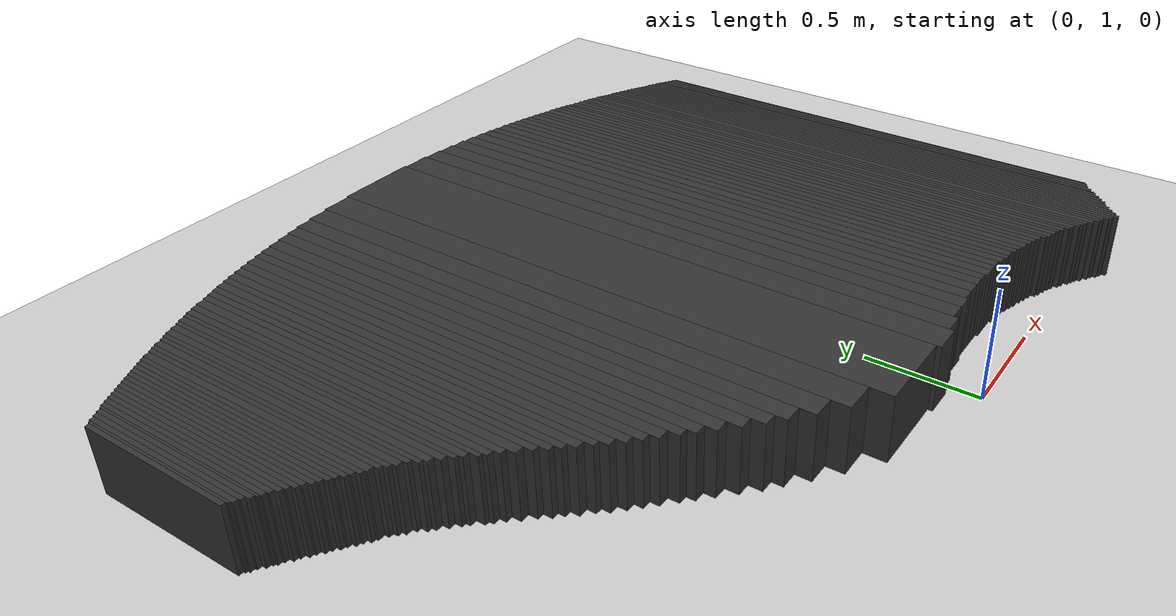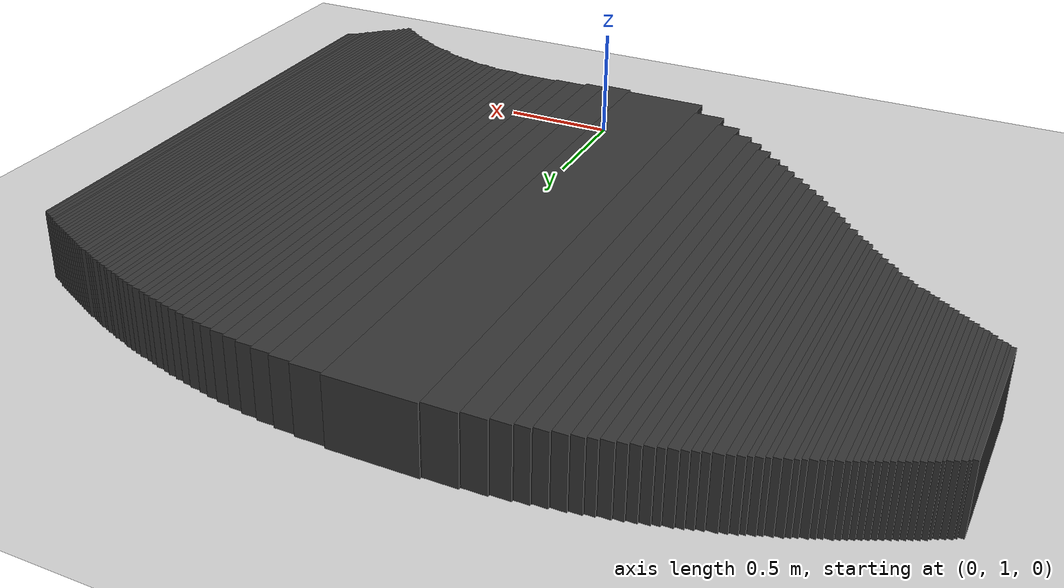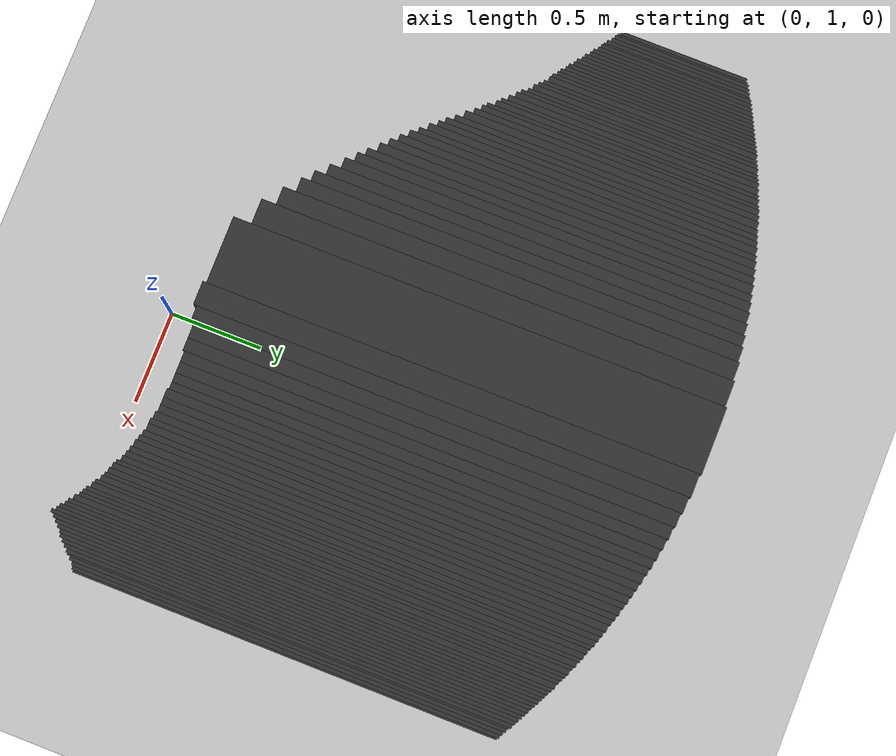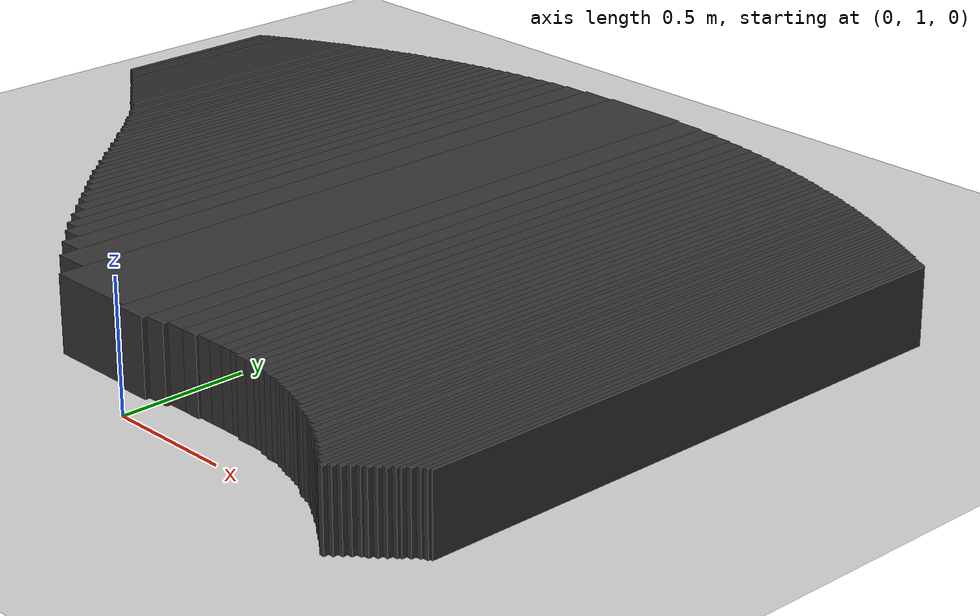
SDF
<sdf version="1.7">
 <world name="mapa_mundo">
  <model name="ground_plane">
   <static>true</static>
   <link name="link">
    <collision name="collision">
     <geometry><plane><normal>0 0 1</normal><size>10 10</size></plane></geometry>
     <surface><friction><ode><mu>100</mu><mu2>50</mu2></ode></friction></surface>
    </collision>
    <visual name="visual">
     <geometry><plane><normal>0 0 1</normal><size>10 10</size></plane></geometry>
     <material>
      <ambient>0.8 0.8 0.8 1</ambient>
      <diffuse>0.8 0.8 0.8 1</diffuse>
      <specular>0.8 0.8 0.8 1</specular>
     </material>
    </visual>
   </link>
  </model>
  <model name="wall_0">
   <static>true</static>
   <link name="link">
    <collision name="collision"><geometry><box><size>0.37 2.71 0.3</size></box></geometry></collision>
    <visual name="visual">
     <geometry><box><size>0.37 2.71 0.3</size></box></geometry>
     <material><ambient>0.2 0.2 0.2 1</ambient><diffuse>0.2 0.2 0.2 1</diffuse></material>
    </visual>
    <pose>-0.365 2.505 0.15 0 0 0</pose>
   </link>
  </model>
  <model name="wall_1">
   <static>true</static>
   <link name="link">
    <collision name="collision"><geometry><box><size>0.14 2.6 0.3</size></box></geometry></collision>
    <visual name="visual">
     <geometry><box><size>0.14 2.6 0.3</size></box></geometry>
     <material><ambient>0.2 0.2 0.2 1</ambient><diffuse>0.2 0.2 0.2 1</diffuse></material>
    </visual>
    <pose>-0.62 2.5500000000000003 0.15 0 0 0</pose>
   </link>
  </model>
  <model name="wall_2">
   <static>true</static>
   <link name="link">
    <collision name="collision"><geometry><box><size>0.13 2.72 0.3</size></box></geometry></collision>
    <visual name="visual">
     <geometry><box><size>0.13 2.72 0.3</size></box></geometry>
     <material><ambient>0.2 0.2 0.2 1</ambient><diffuse>0.2 0.2 0.2 1</diffuse></material>
    </visual>
    <pose>-0.115 2.49 0.15 0 0 0</pose>
   </link>
  </model>
  <model name="wall_3">
   <static>true</static>
   <link name="link">
    <collision name="collision">
     <geometry><box><size>0.1 2.5100000000000002 0.3</size></box></geometry>
    </collision>
    <visual name="visual">
     <geometry><box><size>0.1 2.5100000000000002 0.3</size></box></geometry>
     <material><ambient>0.2 0.2 0.2 1</ambient><diffuse>0.2 0.2 0.2 1</diffuse></material>
    </visual>
    <pose>-0.74 2.585 0.15 0 0 0</pose>
   </link>
  </model>
  <model name="wall_4">
   <static>true</static>
   <link name="link">
    <collision name="collision"><geometry><box><size>0.09 2.69 0.3</size></box></geometry></collision>
    <visual name="visual">
     <geometry><box><size>0.09 2.69 0.3</size></box></geometry>
     <material><ambient>0.2 0.2 0.2 1</ambient><diffuse>0.2 0.2 0.2 1</diffuse></material>
    </visual>
    <pose>-0.005 2.495 0.15 0 0 0</pose>
   </link>
  </model>
  <model name="wall_5">
   <static>true</static>
   <link name="link">
    <collision name="collision"><geometry><box><size>0.08 2.43 0.3</size></box></geometry></collision>
    <visual name="visual">
     <geometry><box><size>0.08 2.43 0.3</size></box></geometry>
     <material><ambient>0.2 0.2 0.2 1</ambient><diffuse>0.2 0.2 0.2 1</diffuse></material>
    </visual>
    <pose>-0.8300000000000001 2.615 0.15 0 0 0</pose>
   </link>
  </model>
  <model name="wall_6">
   <static>true</static>
   <link name="link">
    <collision name="collision"><geometry><box><size>0.08 2.66 0.3</size></box></geometry></collision>
    <visual name="visual">
     <geometry><box><size>0.08 2.66 0.3</size></box></geometry>
     <material><ambient>0.2 0.2 0.2 1</ambient><diffuse>0.2 0.2 0.2 1</diffuse></material>
    </visual>
    <pose>0.08 2.5 0.15 0 0 0</pose>
   </link>
  </model>
  <model name="wall_7">
   <static>true</static>
   <link name="link">
    <collision name="collision"><geometry><box><size>0.06 2.37 0.3</size></box></geometry></collision>
    <visual name="visual">
     <geometry><box><size>0.06 2.37 0.3</size></box></geometry>
     <material><ambient>0.2 0.2 0.2 1</ambient><diffuse>0.2 0.2 0.2 1</diffuse></material>
    </visual>
    <pose>-0.9 2.6350000000000002 0.15 0 0 0</pose>
   </link>
  </model>
  <model name="wall_8">
   <static>true</static>
   <link name="link">
    <collision name="collision"><geometry><box><size>0.07 2.65 0.3</size></box></geometry></collision>
    <visual name="visual">
     <geometry><box><size>0.07 2.65 0.3</size></box></geometry>
     <material><ambient>0.2 0.2 0.2 1</ambient><diffuse>0.2 0.2 0.2 1</diffuse></material>
    </visual>
    <pose>0.155 2.495 0.15 0 0 0</pose>
   </link>
  </model>
  <model name="wall_9">
   <static>true</static>
   <link name="link">
    <collision name="collision">
     <geometry><box><size>0.06 2.3000000000000003 0.3</size></box></geometry>
    </collision>
    <visual name="visual">
     <geometry><box><size>0.06 2.3000000000000003 0.3</size></box></geometry>
     <material><ambient>0.2 0.2 0.2 1</ambient><diffuse>0.2 0.2 0.2 1</diffuse></material>
    </visual>
    <pose>-0.96 2.66 0.15 0 0 0</pose>
   </link>
  </model>
  <model name="wall_10">
   <static>true</static>
   <link name="link">
    <collision name="collision"><geometry><box><size>0.06 2.63 0.3</size></box></geometry></collision>
    <visual name="visual">
     <geometry><box><size>0.06 2.63 0.3</size></box></geometry>
     <material><ambient>0.2 0.2 0.2 1</ambient><diffuse>0.2 0.2 0.2 1</diffuse></material>
    </visual>
    <pose>0.22 2.495 0.15 0 0 0</pose>
   </link>
  </model>
  <model name="wall_11">
   <static>true</static>
   <link name="link">
    <collision name="collision"><geometry><box><size>0.06 2.23 0.3</size></box></geometry></collision>
    <visual name="visual">
     <geometry><box><size>0.06 2.23 0.3</size></box></geometry>
     <material><ambient>0.2 0.2 0.2 1</ambient><diffuse>0.2 0.2 0.2 1</diffuse></material>
    </visual>
    <pose>-1.02 2.685 0.15 0 0 0</pose>
   </link>
  </model>
  <model name="wall_12">
   <static>true</static>
   <link name="link">
    <collision name="collision"><geometry><box><size>0.06 2.62 0.3</size></box></geometry></collision>
    <visual name="visual">
     <geometry><box><size>0.06 2.62 0.3</size></box></geometry>
     <material><ambient>0.2 0.2 0.2 1</ambient><diffuse>0.2 0.2 0.2 1</diffuse></material>
    </visual>
    <pose>0.28 2.49 0.15 0 0 0</pose>
   </link>
  </model>
  <model name="wall_13">
   <static>true</static>
   <link name="link">
    <collision name="collision"><geometry><box><size>0.05 2.17 0.3</size></box></geometry></collision>
    <visual name="visual">
     <geometry><box><size>0.05 2.17 0.3</size></box></geometry>
     <material><ambient>0.2 0.2 0.2 1</ambient><diffuse>0.2 0.2 0.2 1</diffuse></material>
    </visual>
    <pose>-1.075 2.705 0.15 0 0 0</pose>
   </link>
  </model>
  <model name="wall_14">
   <static>true</static>
   <link name="link">
    <collision name="collision"><geometry><box><size>0.05 2.61 0.3</size></box></geometry></collision>
    <visual name="visual">
     <geometry><box><size>0.05 2.61 0.3</size></box></geometry>
     <material><ambient>0.2 0.2 0.2 1</ambient><diffuse>0.2 0.2 0.2 1</diffuse></material>
    </visual>
    <pose>0.335 2.485 0.15 0 0 0</pose>
   </link>
  </model>
  <model name="wall_15">
   <static>true</static>
   <link name="link">
    <collision name="collision"><geometry><box><size>0.04 2.12 0.3</size></box></geometry></collision>
    <visual name="visual">
     <geometry><box><size>0.04 2.12 0.3</size></box></geometry>
     <material><ambient>0.2 0.2 0.2 1</ambient><diffuse>0.2 0.2 0.2 1</diffuse></material>
    </visual>
    <pose>-1.12 2.72 0.15 0 0 0</pose>
   </link>
  </model>
  <model name="wall_16">
   <static>true</static>
   <link name="link">
    <collision name="collision"><geometry><box><size>0.04 2.6 0.3</size></box></geometry></collision>
    <visual name="visual">
     <geometry><box><size>0.04 2.6 0.3</size></box></geometry>
     <material><ambient>0.2 0.2 0.2 1</ambient><diffuse>0.2 0.2 0.2 1</diffuse></material>
    </visual>
    <pose>0.38 2.48 0.15 0 0 0</pose>
   </link>
  </model>
  <model name="wall_17">
   <static>true</static>
   <link name="link">
    <collision name="collision"><geometry><box><size>0.05 2.06 0.3</size></box></geometry></collision>
    <visual name="visual">
     <geometry><box><size>0.05 2.06 0.3</size></box></geometry>
     <material><ambient>0.2 0.2 0.2 1</ambient><diffuse>0.2 0.2 0.2 1</diffuse></material>
    </visual>
    <pose>-1.165 2.74 0.15 0 0 0</pose>
   </link>
  </model>
  <model name="wall_18">
   <static>true</static>
   <link name="link">
    <collision name="collision"><geometry><box><size>0.05 2.6 0.3</size></box></geometry></collision>
    <visual name="visual">
     <geometry><box><size>0.05 2.6 0.3</size></box></geometry>
     <material><ambient>0.2 0.2 0.2 1</ambient><diffuse>0.2 0.2 0.2 1</diffuse></material>
    </visual>
    <pose>0.425 2.47 0.15 0 0 0</pose>
   </link>
  </model>
  <model name="wall_19">
   <static>true</static>
   <link name="link">
    <collision name="collision">
     <geometry><box><size>0.04 2.0100000000000002 0.3</size></box></geometry>
    </collision>
    <visual name="visual">
     <geometry><box><size>0.04 2.0100000000000002 0.3</size></box></geometry>
     <material><ambient>0.2 0.2 0.2 1</ambient><diffuse>0.2 0.2 0.2 1</diffuse></material>
    </visual>
    <pose>-1.21 2.755 0.15 0 0 0</pose>
   </link>
  </model>
  <model name="wall_20">
   <static>true</static>
   <link name="link">
    <collision name="collision"><geometry><box><size>0.04 2.59 0.3</size></box></geometry></collision>
    <visual name="visual">
     <geometry><box><size>0.04 2.59 0.3</size></box></geometry>
     <material><ambient>0.2 0.2 0.2 1</ambient><diffuse>0.2 0.2 0.2 1</diffuse></material>
    </visual>
    <pose>0.47000000000000003 2.465 0.15 0 0 0</pose>
   </link>
  </model>
  <model name="wall_21">
   <static>true</static>
   <link name="link">
    <collision name="collision"><geometry><box><size>0.04 1.96 0.3</size></box></geometry></collision>
    <visual name="visual">
     <geometry><box><size>0.04 1.96 0.3</size></box></geometry>
     <material><ambient>0.2 0.2 0.2 1</ambient><diffuse>0.2 0.2 0.2 1</diffuse></material>
    </visual>
    <pose>-1.25 2.77 0.15 0 0 0</pose>
   </link>
  </model>
  <model name="wall_22">
   <static>true</static>
   <link name="link">
    <collision name="collision"><geometry><box><size>0.04 2.58 0.3</size></box></geometry></collision>
    <visual name="visual">
     <geometry><box><size>0.04 2.58 0.3</size></box></geometry>
     <material><ambient>0.2 0.2 0.2 1</ambient><diffuse>0.2 0.2 0.2 1</diffuse></material>
    </visual>
    <pose>0.51 2.46 0.15 0 0 0</pose>
   </link>
  </model>
  <model name="wall_23">
   <static>true</static>
   <link name="link">
    <collision name="collision">
     <geometry><box><size>0.04 1.9100000000000001 0.3</size></box></geometry>
    </collision>
    <visual name="visual">
     <geometry><box><size>0.04 1.9100000000000001 0.3</size></box></geometry>
     <material><ambient>0.2 0.2 0.2 1</ambient><diffuse>0.2 0.2 0.2 1</diffuse></material>
    </visual>
    <pose>-1.29 2.785 0.15 0 0 0</pose>
   </link>
  </model>
  <model name="wall_24">
   <static>true</static>
   <link name="link">
    <collision name="collision"><geometry><box><size>0.04 2.58 0.3</size></box></geometry></collision>
    <visual name="visual">
     <geometry><box><size>0.04 2.58 0.3</size></box></geometry>
     <material><ambient>0.2 0.2 0.2 1</ambient><diffuse>0.2 0.2 0.2 1</diffuse></material>
    </visual>
    <pose>0.55 2.45 0.15 0 0 0</pose>
   </link>
  </model>
  <model name="wall_25">
   <static>true</static>
   <link name="link">
    <collision name="collision"><geometry><box><size>0.03 1.86 0.3</size></box></geometry></collision>
    <visual name="visual">
     <geometry><box><size>0.03 1.86 0.3</size></box></geometry>
     <material><ambient>0.2 0.2 0.2 1</ambient><diffuse>0.2 0.2 0.2 1</diffuse></material>
    </visual>
    <pose>-1.325 2.8000000000000003 0.15 0 0 0</pose>
   </link>
  </model>
  <model name="wall_26">
   <static>true</static>
   <link name="link">
    <collision name="collision"><geometry><box><size>0.03 2.58 0.3</size></box></geometry></collision>
    <visual name="visual">
     <geometry><box><size>0.03 2.58 0.3</size></box></geometry>
     <material><ambient>0.2 0.2 0.2 1</ambient><diffuse>0.2 0.2 0.2 1</diffuse></material>
    </visual>
    <pose>0.585 2.44 0.15 0 0 0</pose>
   </link>
  </model>
  <model name="wall_27">
   <static>true</static>
   <link name="link">
    <collision name="collision"><geometry><box><size>0.04 1.81 0.3</size></box></geometry></collision>
    <visual name="visual">
     <geometry><box><size>0.04 1.81 0.3</size></box></geometry>
     <material><ambient>0.2 0.2 0.2 1</ambient><diffuse>0.2 0.2 0.2 1</diffuse></material>
    </visual>
    <pose>-1.36 2.815 0.15 0 0 0</pose>
   </link>
  </model>
  <model name="wall_28">
   <static>true</static>
   <link name="link">
    <collision name="collision"><geometry><box><size>0.04 2.57 0.3</size></box></geometry></collision>
    <visual name="visual">
     <geometry><box><size>0.04 2.57 0.3</size></box></geometry>
     <material><ambient>0.2 0.2 0.2 1</ambient><diffuse>0.2 0.2 0.2 1</diffuse></material>
    </visual>
    <pose>0.62 2.435 0.15 0 0 0</pose>
   </link>
  </model>
  <model name="wall_29">
   <static>true</static>
   <link name="link">
    <collision name="collision"><geometry><box><size>0.03 1.76 0.3</size></box></geometry></collision>
    <visual name="visual">
     <geometry><box><size>0.03 1.76 0.3</size></box></geometry>
     <material><ambient>0.2 0.2 0.2 1</ambient><diffuse>0.2 0.2 0.2 1</diffuse></material>
    </visual>
    <pose>-1.395 2.83 0.15 0 0 0</pose>
   </link>
  </model>
  <model name="wall_30">
   <static>true</static>
   <link name="link">
    <collision name="collision"><geometry><box><size>0.03 2.57 0.3</size></box></geometry></collision>
    <visual name="visual">
     <geometry><box><size>0.03 2.57 0.3</size></box></geometry>
     <material><ambient>0.2 0.2 0.2 1</ambient><diffuse>0.2 0.2 0.2 1</diffuse></material>
    </visual>
    <pose>0.655 2.4250000000000003 0.15 0 0 0</pose>
   </link>
  </model>
  <model name="wall_31">
   <static>true</static>
   <link name="link">
    <collision name="collision"><geometry><box><size>0.03 1.72 0.3</size></box></geometry></collision>
    <visual name="visual">
     <geometry><box><size>0.03 1.72 0.3</size></box></geometry>
     <material><ambient>0.2 0.2 0.2 1</ambient><diffuse>0.2 0.2 0.2 1</diffuse></material>
    </visual>
    <pose>-1.425 2.84 0.15 0 0 0</pose>
   </link>
  </model>
  <model name="wall_32">
   <static>true</static>
   <link name="link">
    <collision name="collision"><geometry><box><size>0.03 2.57 0.3</size></box></geometry></collision>
    <visual name="visual">
     <geometry><box><size>0.03 2.57 0.3</size></box></geometry>
     <material><ambient>0.2 0.2 0.2 1</ambient><diffuse>0.2 0.2 0.2 1</diffuse></material>
    </visual>
    <pose>0.685 2.415 0.15 0 0 0</pose>
   </link>
  </model>
  <model name="wall_33">
   <static>true</static>
   <link name="link">
    <collision name="collision"><geometry><box><size>0.03 1.67 0.3</size></box></geometry></collision>
    <visual name="visual">
     <geometry><box><size>0.03 1.67 0.3</size></box></geometry>
     <material><ambient>0.2 0.2 0.2 1</ambient><diffuse>0.2 0.2 0.2 1</diffuse></material>
    </visual>
    <pose>-1.455 2.855 0.15 0 0 0</pose>
   </link>
  </model>
  <model name="wall_34">
   <static>true</static>
   <link name="link">
    <collision name="collision"><geometry><box><size>0.04 2.57 0.3</size></box></geometry></collision>
    <visual name="visual">
     <geometry><box><size>0.04 2.57 0.3</size></box></geometry>
     <material><ambient>0.2 0.2 0.2 1</ambient><diffuse>0.2 0.2 0.2 1</diffuse></material>
    </visual>
    <pose>0.72 2.4050000000000002 0.15 0 0 0</pose>
   </link>
  </model>
  <model name="wall_35">
   <static>true</static>
   <link name="link">
    <collision name="collision"><geometry><box><size>0.04 1.62 0.3</size></box></geometry></collision>
    <visual name="visual">
     <geometry><box><size>0.04 1.62 0.3</size></box></geometry>
     <material><ambient>0.2 0.2 0.2 1</ambient><diffuse>0.2 0.2 0.2 1</diffuse></material>
    </visual>
    <pose>-1.49 2.87 0.15 0 0 0</pose>
   </link>
  </model>
  <model name="wall_36">
   <static>true</static>
   <link name="link">
    <collision name="collision"><geometry><box><size>0.03 2.57 0.3</size></box></geometry></collision>
    <visual name="visual">
     <geometry><box><size>0.03 2.57 0.3</size></box></geometry>
     <material><ambient>0.2 0.2 0.2 1</ambient><diffuse>0.2 0.2 0.2 1</diffuse></material>
    </visual>
    <pose>0.755 2.395 0.15 0 0 0</pose>
   </link>
  </model>
  <model name="wall_37">
   <static>true</static>
   <link name="link">
    <collision name="collision"><geometry><box><size>0.03 1.57 0.3</size></box></geometry></collision>
    <visual name="visual">
     <geometry><box><size>0.03 1.57 0.3</size></box></geometry>
     <material><ambient>0.2 0.2 0.2 1</ambient><diffuse>0.2 0.2 0.2 1</diffuse></material>
    </visual>
    <pose>-1.5250000000000001 2.8850000000000002 0.15 0 0 0</pose>
   </link>
  </model>
  <model name="wall_38">
   <static>true</static>
   <link name="link">
    <collision name="collision"><geometry><box><size>0.03 2.57 0.3</size></box></geometry></collision>
    <visual name="visual">
     <geometry><box><size>0.03 2.57 0.3</size></box></geometry>
     <material><ambient>0.2 0.2 0.2 1</ambient><diffuse>0.2 0.2 0.2 1</diffuse></material>
    </visual>
    <pose>0.785 2.3850000000000002 0.15 0 0 0</pose>
   </link>
  </model>
  <model name="wall_39">
   <static>true</static>
   <link name="link">
    <collision name="collision"><geometry><box><size>0.03 1.53 0.3</size></box></geometry></collision>
    <visual name="visual">
     <geometry><box><size>0.03 1.53 0.3</size></box></geometry>
     <material><ambient>0.2 0.2 0.2 1</ambient><diffuse>0.2 0.2 0.2 1</diffuse></material>
    </visual>
    <pose>-1.555 2.895 0.15 0 0 0</pose>
   </link>
  </model>
  <model name="wall_40">
   <static>true</static>
   <link name="link">
    <collision name="collision"><geometry><box><size>0.03 2.57 0.3</size></box></geometry></collision>
    <visual name="visual">
     <geometry><box><size>0.03 2.57 0.3</size></box></geometry>
     <material><ambient>0.2 0.2 0.2 1</ambient><diffuse>0.2 0.2 0.2 1</diffuse></material>
    </visual>
    <pose>0.8150000000000001 2.375 0.15 0 0 0</pose>
   </link>
  </model>
  <model name="wall_41">
   <static>true</static>
   <link name="link">
    <collision name="collision"><geometry><box><size>0.02 1.5 0.3</size></box></geometry></collision>
    <visual name="visual">
     <geometry><box><size>0.02 1.5 0.3</size></box></geometry>
     <material><ambient>0.2 0.2 0.2 1</ambient><diffuse>0.2 0.2 0.2 1</diffuse></material>
    </visual>
    <pose>-1.58 2.9 0.15 0 0 0</pose>
   </link>
  </model>
  <model name="wall_42">
   <static>true</static>
   <link name="link">
    <collision name="collision"><geometry><box><size>0.02 2.58 0.3</size></box></geometry></collision>
    <visual name="visual">
     <geometry><box><size>0.02 2.58 0.3</size></box></geometry>
     <material><ambient>0.2 0.2 0.2 1</ambient><diffuse>0.2 0.2 0.2 1</diffuse></material>
    </visual>
    <pose>0.84 2.36 0.15 0 0 0</pose>
   </link>
  </model>
  <model name="wall_43">
   <static>true</static>
   <link name="link">
    <collision name="collision"><geometry><box><size>0.03 1.45 0.3</size></box></geometry></collision>
    <visual name="visual">
     <geometry><box><size>0.03 1.45 0.3</size></box></geometry>
     <material><ambient>0.2 0.2 0.2 1</ambient><diffuse>0.2 0.2 0.2 1</diffuse></material>
    </visual>
    <pose>-1.605 2.915 0.15 0 0 0</pose>
   </link>
  </model>
  <model name="wall_44">
   <static>true</static>
   <link name="link">
    <collision name="collision"><geometry><box><size>0.03 2.58 0.3</size></box></geometry></collision>
    <visual name="visual">
     <geometry><box><size>0.03 2.58 0.3</size></box></geometry>
     <material><ambient>0.2 0.2 0.2 1</ambient><diffuse>0.2 0.2 0.2 1</diffuse></material>
    </visual>
    <pose>0.865 2.35 0.15 0 0 0</pose>
   </link>
  </model>
  <model name="wall_45">
   <static>true</static>
   <link name="link">
    <collision name="collision"><geometry><box><size>0.02 1.42 0.3</size></box></geometry></collision>
    <visual name="visual">
     <geometry><box><size>0.02 1.42 0.3</size></box></geometry>
     <material><ambient>0.2 0.2 0.2 1</ambient><diffuse>0.2 0.2 0.2 1</diffuse></material>
    </visual>
    <pose>-1.6300000000000001 2.92 0.15 0 0 0</pose>
   </link>
  </model>
  <model name="wall_46">
   <static>true</static>
   <link name="link">
    <collision name="collision"><geometry><box><size>0.03 2.58 0.3</size></box></geometry></collision>
    <visual name="visual">
     <geometry><box><size>0.03 2.58 0.3</size></box></geometry>
     <material><ambient>0.2 0.2 0.2 1</ambient><diffuse>0.2 0.2 0.2 1</diffuse></material>
    </visual>
    <pose>0.895 2.34 0.15 0 0 0</pose>
   </link>
  </model>
  <model name="wall_47">
   <static>true</static>
   <link name="link">
    <collision name="collision">
     <geometry><box><size>0.03 1.3800000000000001 0.3</size></box></geometry>
    </collision>
    <visual name="visual">
     <geometry><box><size>0.03 1.3800000000000001 0.3</size></box></geometry>
     <material><ambient>0.2 0.2 0.2 1</ambient><diffuse>0.2 0.2 0.2 1</diffuse></material>
    </visual>
    <pose>-1.655 2.93 0.15 0 0 0</pose>
   </link>
  </model>
  <model name="wall_48">
   <static>true</static>
   <link name="link">
    <collision name="collision"><geometry><box><size>0.02 2.58 0.3</size></box></geometry></collision>
    <visual name="visual">
     <geometry><box><size>0.02 2.58 0.3</size></box></geometry>
     <material><ambient>0.2 0.2 0.2 1</ambient><diffuse>0.2 0.2 0.2 1</diffuse></material>
    </visual>
    <pose>0.92 2.33 0.15 0 0 0</pose>
   </link>
  </model>
  <model name="wall_49">
   <static>true</static>
   <link name="link">
    <collision name="collision"><geometry><box><size>0.03 1.34 0.3</size></box></geometry></collision>
    <visual name="visual">
     <geometry><box><size>0.03 1.34 0.3</size></box></geometry>
     <material><ambient>0.2 0.2 0.2 1</ambient><diffuse>0.2 0.2 0.2 1</diffuse></material>
    </visual>
    <pose>-1.685 2.94 0.15 0 0 0</pose>
   </link>
  </model>
  <model name="wall_50">
   <static>true</static>
   <link name="link">
    <collision name="collision"><geometry><box><size>0.03 2.58 0.3</size></box></geometry></collision>
    <visual name="visual">
     <geometry><box><size>0.03 2.58 0.3</size></box></geometry>
     <material><ambient>0.2 0.2 0.2 1</ambient><diffuse>0.2 0.2 0.2 1</diffuse></material>
    </visual>
    <pose>0.9450000000000001 2.32 0.15 0 0 0</pose>
   </link>
  </model>
  <model name="wall_51">
   <static>true</static>
   <link name="link">
    <collision name="collision"><geometry><box><size>0.02 1.31 0.3</size></box></geometry></collision>
    <visual name="visual">
     <geometry><box><size>0.02 1.31 0.3</size></box></geometry>
     <material><ambient>0.2 0.2 0.2 1</ambient><diffuse>0.2 0.2 0.2 1</diffuse></material>
    </visual>
    <pose>-1.71 2.945 0.15 0 0 0</pose>
   </link>
  </model>
  <model name="wall_52">
   <static>true</static>
   <link name="link">
    <collision name="collision"><geometry><box><size>0.02 2.59 0.3</size></box></geometry></collision>
    <visual name="visual">
     <geometry><box><size>0.02 2.59 0.3</size></box></geometry>
     <material><ambient>0.2 0.2 0.2 1</ambient><diffuse>0.2 0.2 0.2 1</diffuse></material>
    </visual>
    <pose>0.97 2.305 0.15 0 0 0</pose>
   </link>
  </model>
  <model name="wall_53">
   <static>true</static>
   <link name="link">
    <collision name="collision"><geometry><box><size>0.02 1.27 0.3</size></box></geometry></collision>
    <visual name="visual">
     <geometry><box><size>0.02 1.27 0.3</size></box></geometry>
     <material><ambient>0.2 0.2 0.2 1</ambient><diffuse>0.2 0.2 0.2 1</diffuse></material>
    </visual>
    <pose>-1.73 2.955 0.15 0 0 0</pose>
   </link>
  </model>
  <model name="wall_54">
   <static>true</static>
   <link name="link">
    <collision name="collision"><geometry><box><size>0.03 2.59 0.3</size></box></geometry></collision>
    <visual name="visual">
     <geometry><box><size>0.03 2.59 0.3</size></box></geometry>
     <material><ambient>0.2 0.2 0.2 1</ambient><diffuse>0.2 0.2 0.2 1</diffuse></material>
    </visual>
    <pose>0.995 2.295 0.15 0 0 0</pose>
   </link>
  </model>
  <model name="wall_55">
   <static>true</static>
   <link name="link">
    <collision name="collision"><geometry><box><size>0.03 1.24 0.3</size></box></geometry></collision>
    <visual name="visual">
     <geometry><box><size>0.03 1.24 0.3</size></box></geometry>
     <material><ambient>0.2 0.2 0.2 1</ambient><diffuse>0.2 0.2 0.2 1</diffuse></material>
    </visual>
    <pose>-1.7550000000000001 2.96 0.15 0 0 0</pose>
   </link>
  </model>
  <model name="wall_56">
   <static>true</static>
   <link name="link">
    <collision name="collision"><geometry><box><size>0.02 2.6 0.3</size></box></geometry></collision>
    <visual name="visual">
     <geometry><box><size>0.02 2.6 0.3</size></box></geometry>
     <material><ambient>0.2 0.2 0.2 1</ambient><diffuse>0.2 0.2 0.2 1</diffuse></material>
    </visual>
    <pose>1.02 2.2800000000000002 0.15 0 0 0</pose>
   </link>
  </model>
  <model name="wall_57">
   <static>true</static>
   <link name="link">
    <collision name="collision"><geometry><box><size>0.02 1.21 0.3</size></box></geometry></collision>
    <visual name="visual">
     <geometry><box><size>0.02 1.21 0.3</size></box></geometry>
     <material><ambient>0.2 0.2 0.2 1</ambient><diffuse>0.2 0.2 0.2 1</diffuse></material>
    </visual>
    <pose>-1.78 2.965 0.15 0 0 0</pose>
   </link>
  </model>
  <model name="wall_58">
   <static>true</static>
   <link name="link">
    <collision name="collision"><geometry><box><size>0.02 2.6 0.3</size></box></geometry></collision>
    <visual name="visual">
     <geometry><box><size>0.02 2.6 0.3</size></box></geometry>
     <material><ambient>0.2 0.2 0.2 1</ambient><diffuse>0.2 0.2 0.2 1</diffuse></material>
    </visual>
    <pose>1.04 2.27 0.15 0 0 0</pose>
   </link>
  </model>
  <model name="wall_59">
   <static>true</static>
   <link name="link">
    <collision name="collision"><geometry><box><size>0.02 1.18 0.3</size></box></geometry></collision>
    <visual name="visual">
     <geometry><box><size>0.02 1.18 0.3</size></box></geometry>
     <material><ambient>0.2 0.2 0.2 1</ambient><diffuse>0.2 0.2 0.2 1</diffuse></material>
    </visual>
    <pose>-1.8 2.97 0.15 0 0 0</pose>
   </link>
  </model>
  <model name="wall_60">
   <static>true</static>
   <link name="link">
    <collision name="collision"><geometry><box><size>0.02 2.6 0.3</size></box></geometry></collision>
    <visual name="visual">
     <geometry><box><size>0.02 2.6 0.3</size></box></geometry>
     <material><ambient>0.2 0.2 0.2 1</ambient><diffuse>0.2 0.2 0.2 1</diffuse></material>
    </visual>
    <pose>1.06 2.2600000000000002 0.15 0 0 0</pose>
   </link>
  </model>
  <model name="wall_61">
   <static>true</static>
   <link name="link">
    <collision name="collision">
     <geometry><box><size>0.03 1.1500000000000001 0.3</size></box></geometry>
    </collision>
    <visual name="visual">
     <geometry><box><size>0.03 1.1500000000000001 0.3</size></box></geometry>
     <material><ambient>0.2 0.2 0.2 1</ambient><diffuse>0.2 0.2 0.2 1</diffuse></material>
    </visual>
    <pose>-1.825 2.975 0.15 0 0 0</pose>
   </link>
  </model>
  <model name="wall_62">
   <static>true</static>
   <link name="link">
    <collision name="collision"><geometry><box><size>0.03 2.61 0.3</size></box></geometry></collision>
    <visual name="visual">
     <geometry><box><size>0.03 2.61 0.3</size></box></geometry>
     <material><ambient>0.2 0.2 0.2 1</ambient><diffuse>0.2 0.2 0.2 1</diffuse></material>
    </visual>
    <pose>1.085 2.245 0.15 0 0 0</pose>
   </link>
  </model>
  <model name="wall_63">
   <static>true</static>
   <link name="link">
    <collision name="collision">
     <geometry><box><size>0.02 1.1300000000000001 0.3</size></box></geometry>
    </collision>
    <visual name="visual">
     <geometry><box><size>0.02 1.1300000000000001 0.3</size></box></geometry>
     <material><ambient>0.2 0.2 0.2 1</ambient><diffuse>0.2 0.2 0.2 1</diffuse></material>
    </visual>
    <pose>-1.85 2.975 0.15 0 0 0</pose>
   </link>
  </model>
  <model name="wall_64">
   <static>true</static>
   <link name="link">
    <collision name="collision"><geometry><box><size>0.02 2.62 0.3</size></box></geometry></collision>
    <visual name="visual">
     <geometry><box><size>0.02 2.62 0.3</size></box></geometry>
     <material><ambient>0.2 0.2 0.2 1</ambient><diffuse>0.2 0.2 0.2 1</diffuse></material>
    </visual>
    <pose>1.11 2.23 0.15 0 0 0</pose>
   </link>
  </model>
  <model name="wall_65">
   <static>true</static>
   <link name="link">
    <collision name="collision"><geometry><box><size>0.02 1.1 0.3</size></box></geometry></collision>
    <visual name="visual">
     <geometry><box><size>0.02 1.1 0.3</size></box></geometry>
     <material><ambient>0.2 0.2 0.2 1</ambient><diffuse>0.2 0.2 0.2 1</diffuse></material>
    </visual>
    <pose>-1.87 2.98 0.15 0 0 0</pose>
   </link>
  </model>
  <model name="wall_66">
   <static>true</static>
   <link name="link">
    <collision name="collision"><geometry><box><size>0.02 2.62 0.3</size></box></geometry></collision>
    <visual name="visual">
     <geometry><box><size>0.02 2.62 0.3</size></box></geometry>
     <material><ambient>0.2 0.2 0.2 1</ambient><diffuse>0.2 0.2 0.2 1</diffuse></material>
    </visual>
    <pose>1.1300000000000001 2.22 0.15 0 0 0</pose>
   </link>
  </model>
  <model name="wall_67">
   <static>true</static>
   <link name="link">
    <collision name="collision"><geometry><box><size>0.02 1.08 0.3</size></box></geometry></collision>
    <visual name="visual">
     <geometry><box><size>0.02 1.08 0.3</size></box></geometry>
     <material><ambient>0.2 0.2 0.2 1</ambient><diffuse>0.2 0.2 0.2 1</diffuse></material>
    </visual>
    <pose>-1.8900000000000001 2.98 0.15 0 0 0</pose>
   </link>
  </model>
  <model name="wall_68">
   <static>true</static>
   <link name="link">
    <collision name="collision"><geometry><box><size>0.02 2.63 0.3</size></box></geometry></collision>
    <visual name="visual">
     <geometry><box><size>0.02 2.63 0.3</size></box></geometry>
     <material><ambient>0.2 0.2 0.2 1</ambient><diffuse>0.2 0.2 0.2 1</diffuse></material>
    </visual>
    <pose>1.1500000000000001 2.205 0.15 0 0 0</pose>
   </link>
  </model>
  <model name="wall_69">
   <static>true</static>
   <link name="link">
    <collision name="collision"><geometry><box><size>0.02 1.05 0.3</size></box></geometry></collision>
    <visual name="visual">
     <geometry><box><size>0.02 1.05 0.3</size></box></geometry>
     <material><ambient>0.2 0.2 0.2 1</ambient><diffuse>0.2 0.2 0.2 1</diffuse></material>
    </visual>
    <pose>-1.9100000000000001 2.985 0.15 0 0 0</pose>
   </link>
  </model>
  <model name="wall_70">
   <static>true</static>
   <link name="link">
    <collision name="collision"><geometry><box><size>0.02 2.63 0.3</size></box></geometry></collision>
    <visual name="visual">
     <geometry><box><size>0.02 2.63 0.3</size></box></geometry>
     <material><ambient>0.2 0.2 0.2 1</ambient><diffuse>0.2 0.2 0.2 1</diffuse></material>
    </visual>
    <pose>1.17 2.195 0.15 0 0 0</pose>
   </link>
  </model>
  <model name="wall_71">
   <static>true</static>
   <link name="link">
    <collision name="collision"><geometry><box><size>0.02 1.03 0.3</size></box></geometry></collision>
    <visual name="visual">
     <geometry><box><size>0.02 1.03 0.3</size></box></geometry>
     <material><ambient>0.2 0.2 0.2 1</ambient><diffuse>0.2 0.2 0.2 1</diffuse></material>
    </visual>
    <pose>-1.93 2.985 0.15 0 0 0</pose>
   </link>
  </model>
  <model name="wall_72">
   <static>true</static>
   <link name="link">
    <collision name="collision"><geometry><box><size>0.02 2.64 0.3</size></box></geometry></collision>
    <visual name="visual">
     <geometry><box><size>0.02 2.64 0.3</size></box></geometry>
     <material><ambient>0.2 0.2 0.2 1</ambient><diffuse>0.2 0.2 0.2 1</diffuse></material>
    </visual>
    <pose>1.19 2.18 0.15 0 0 0</pose>
   </link>
  </model>
  <model name="wall_73">
   <static>true</static>
   <link name="link">
    <collision name="collision"><geometry><box><size>0.02 1.0 0.3</size></box></geometry></collision>
    <visual name="visual">
     <geometry><box><size>0.02 1.0 0.3</size></box></geometry>
     <material><ambient>0.2 0.2 0.2 1</ambient><diffuse>0.2 0.2 0.2 1</diffuse></material>
    </visual>
    <pose>-1.95 2.99 0.15 0 0 0</pose>
   </link>
  </model>
  <model name="wall_74">
   <static>true</static>
   <link name="link">
    <collision name="collision"><geometry><box><size>0.02 2.61 0.3</size></box></geometry></collision>
    <visual name="visual">
     <geometry><box><size>0.02 2.61 0.3</size></box></geometry>
     <material><ambient>0.2 0.2 0.2 1</ambient><diffuse>0.2 0.2 0.2 1</diffuse></material>
    </visual>
    <pose>1.21 2.185 0.15 0 0 0</pose>
   </link>
  </model>
  <model name="wall_75">
   <static>true</static>
   <link name="link">
    <collision name="collision"><geometry><box><size>0.02 0.98 0.3</size></box></geometry></collision>
    <visual name="visual">
     <geometry><box><size>0.02 0.98 0.3</size></box></geometry>
     <material><ambient>0.2 0.2 0.2 1</ambient><diffuse>0.2 0.2 0.2 1</diffuse></material>
    </visual>
    <pose>-1.97 2.99 0.15 0 0 0</pose>
   </link>
  </model>
  <model name="wall_76">
   <static>true</static>
   <link name="link">
    <collision name="collision"><geometry><box><size>0.02 2.58 0.3</size></box></geometry></collision>
    <visual name="visual">
     <geometry><box><size>0.02 2.58 0.3</size></box></geometry>
     <material><ambient>0.2 0.2 0.2 1</ambient><diffuse>0.2 0.2 0.2 1</diffuse></material>
    </visual>
    <pose>1.23 2.19 0.15 0 0 0</pose>
   </link>
  </model>
  <model name="wall_77">
   <static>true</static>
   <link name="link">
    <collision name="collision">
     <geometry><box><size>0.02 0.9500000000000001 0.3</size></box></geometry>
    </collision>
    <visual name="visual">
     <geometry><box><size>0.02 0.9500000000000001 0.3</size></box></geometry>
     <material><ambient>0.2 0.2 0.2 1</ambient><diffuse>0.2 0.2 0.2 1</diffuse></material>
    </visual>
    <pose>-1.99 2.995 0.15 0 0 0</pose>
   </link>
  </model>
  <model name="wall_78">
   <static>true</static>
   <link name="link">
    <collision name="collision">
     <geometry><box><size>0.02 2.5500000000000003 0.3</size></box></geometry>
    </collision>
    <visual name="visual">
     <geometry><box><size>0.02 2.5500000000000003 0.3</size></box></geometry>
     <material><ambient>0.2 0.2 0.2 1</ambient><diffuse>0.2 0.2 0.2 1</diffuse></material>
    </visual>
    <pose>1.25 2.195 0.15 0 0 0</pose>
   </link>
  </model>
  <model name="wall_79">
   <static>true</static>
   <link name="link">
    <collision name="collision"><geometry><box><size>0.02 0.93 0.3</size></box></geometry></collision>
    <visual name="visual">
     <geometry><box><size>0.02 0.93 0.3</size></box></geometry>
     <material><ambient>0.2 0.2 0.2 1</ambient><diffuse>0.2 0.2 0.2 1</diffuse></material>
    </visual>
    <pose>-2.0100000000000002 2.995 0.15 0 0 0</pose>
   </link>
  </model>
  <model name="wall_80">
   <static>true</static>
   <link name="link">
    <collision name="collision"><geometry><box><size>0.02 2.52 0.3</size></box></geometry></collision>
    <visual name="visual">
     <geometry><box><size>0.02 2.52 0.3</size></box></geometry>
     <material><ambient>0.2 0.2 0.2 1</ambient><diffuse>0.2 0.2 0.2 1</diffuse></material>
    </visual>
    <pose>1.27 2.2 0.15 0 0 0</pose>
   </link>
  </model>
  <model name="wall_81">
   <static>true</static>
   <link name="link">
    <collision name="collision"><geometry><box><size>0.02 0.9 0.3</size></box></geometry></collision>
    <visual name="visual">
     <geometry><box><size>0.02 0.9 0.3</size></box></geometry>
     <material><ambient>0.2 0.2 0.2 1</ambient><diffuse>0.2 0.2 0.2 1</diffuse></material>
    </visual>
    <pose>-2.0300000000000002 3.0 0.15 0 0 0</pose>
   </link>
  </model>
  <model name="wall_82">
   <static>true</static>
   <link name="link">
    <collision name="collision"><geometry><box><size>0.02 2.5 0.3</size></box></geometry></collision>
    <visual name="visual">
     <geometry><box><size>0.02 2.5 0.3</size></box></geometry>
     <material><ambient>0.2 0.2 0.2 1</ambient><diffuse>0.2 0.2 0.2 1</diffuse></material>
    </visual>
    <pose>1.29 2.2 0.15 0 0 0</pose>
   </link>
  </model>
  <model name="wall_83">
   <static>true</static>
   <link name="link">
    <collision name="collision"><geometry><box><size>0.02 0.88 0.3</size></box></geometry></collision>
    <visual name="visual">
     <geometry><box><size>0.02 0.88 0.3</size></box></geometry>
     <material><ambient>0.2 0.2 0.2 1</ambient><diffuse>0.2 0.2 0.2 1</diffuse></material>
    </visual>
    <pose>-2.05 3.0 0.15 0 0 0</pose>
   </link>
  </model>
  <model name="wall_84">
   <static>true</static>
   <link name="link">
    <collision name="collision"><geometry><box><size>0.02 2.47 0.3</size></box></geometry></collision>
    <visual name="visual">
     <geometry><box><size>0.02 2.47 0.3</size></box></geometry>
     <material><ambient>0.2 0.2 0.2 1</ambient><diffuse>0.2 0.2 0.2 1</diffuse></material>
    </visual>
    <pose>1.31 2.205 0.15 0 0 0</pose>
   </link>
  </model>
  <model name="wall_85">
   <static>true</static>
   <link name="link">
    <collision name="collision"><geometry><box><size>0.02 0.85 0.3</size></box></geometry></collision>
    <visual name="visual">
     <geometry><box><size>0.02 0.85 0.3</size></box></geometry>
     <material><ambient>0.2 0.2 0.2 1</ambient><diffuse>0.2 0.2 0.2 1</diffuse></material>
    </visual>
    <pose>-2.07 3.005 0.15 0 0 0</pose>
   </link>
  </model>
  <model name="wall_86">
   <static>true</static>
   <link name="link">
    <collision name="collision"><geometry><box><size>0.02 2.44 0.3</size></box></geometry></collision>
    <visual name="visual">
     <geometry><box><size>0.02 2.44 0.3</size></box></geometry>
     <material><ambient>0.2 0.2 0.2 1</ambient><diffuse>0.2 0.2 0.2 1</diffuse></material>
    </visual>
    <pose>1.33 2.21 0.15 0 0 0</pose>
   </link>
  </model>
  <model name="wall_87">
   <static>true</static>
   <link name="link">
    <collision name="collision">
     <geometry><box><size>0.02 0.8300000000000001 0.3</size></box></geometry>
    </collision>
    <visual name="visual">
     <geometry><box><size>0.02 0.8300000000000001 0.3</size></box></geometry>
     <material><ambient>0.2 0.2 0.2 1</ambient><diffuse>0.2 0.2 0.2 1</diffuse></material>
    </visual>
    <pose>-2.09 3.005 0.15 0 0 0</pose>
   </link>
  </model>
  <model name="wall_88">
   <static>true</static>
   <link name="link">
    <collision name="collision"><geometry><box><size>0.02 2.41 0.3</size></box></geometry></collision>
    <visual name="visual">
     <geometry><box><size>0.02 2.41 0.3</size></box></geometry>
     <material><ambient>0.2 0.2 0.2 1</ambient><diffuse>0.2 0.2 0.2 1</diffuse></material>
    </visual>
    <pose>1.35 2.215 0.15 0 0 0</pose>
   </link>
  </model>
  <model name="wall_89">
   <static>true</static>
   <link name="link">
    <collision name="collision"><geometry><box><size>0.01 0.81 0.3</size></box></geometry></collision>
    <visual name="visual">
     <geometry><box><size>0.01 0.81 0.3</size></box></geometry>
     <material><ambient>0.2 0.2 0.2 1</ambient><diffuse>0.2 0.2 0.2 1</diffuse></material>
    </visual>
    <pose>-2.105 3.005 0.15 0 0 0</pose>
   </link>
  </model>
  <model name="wall_90">
   <static>true</static>
   <link name="link">
    <collision name="collision"><geometry><box><size>0.01 2.39 0.3</size></box></geometry></collision>
    <visual name="visual">
     <geometry><box><size>0.01 2.39 0.3</size></box></geometry>
     <material><ambient>0.2 0.2 0.2 1</ambient><diffuse>0.2 0.2 0.2 1</diffuse></material>
    </visual>
    <pose>1.365 2.215 0.15 0 0 0</pose>
   </link>
  </model>
  <model name="wall_91">
   <static>true</static>
   <link name="link">
    <collision name="collision"><geometry><box><size>0.02 0.79 0.3</size></box></geometry></collision>
    <visual name="visual">
     <geometry><box><size>0.02 0.79 0.3</size></box></geometry>
     <material><ambient>0.2 0.2 0.2 1</ambient><diffuse>0.2 0.2 0.2 1</diffuse></material>
    </visual>
    <pose>-2.12 3.005 0.15 0 0 0</pose>
   </link>
  </model>
  <model name="wall_92">
   <static>true</static>
   <link name="link">
    <collision name="collision"><geometry><box><size>0.02 2.36 0.3</size></box></geometry></collision>
    <visual name="visual">
     <geometry><box><size>0.02 2.36 0.3</size></box></geometry>
     <material><ambient>0.2 0.2 0.2 1</ambient><diffuse>0.2 0.2 0.2 1</diffuse></material>
    </visual>
    <pose>1.3800000000000001 2.22 0.15 0 0 0</pose>
   </link>
  </model>
  <model name="wall_93">
   <static>true</static>
   <link name="link">
    <collision name="collision"><geometry><box><size>0.02 0.76 0.3</size></box></geometry></collision>
    <visual name="visual">
     <geometry><box><size>0.02 0.76 0.3</size></box></geometry>
     <material><ambient>0.2 0.2 0.2 1</ambient><diffuse>0.2 0.2 0.2 1</diffuse></material>
    </visual>
    <pose>-2.14 3.0100000000000002 0.15 0 0 0</pose>
   </link>
  </model>
  <model name="wall_94">
   <static>true</static>
   <link name="link">
    <collision name="collision"><geometry><box><size>0.02 2.33 0.3</size></box></geometry></collision>
    <visual name="visual">
     <geometry><box><size>0.02 2.33 0.3</size></box></geometry>
     <material><ambient>0.2 0.2 0.2 1</ambient><diffuse>0.2 0.2 0.2 1</diffuse></material>
    </visual>
    <pose>1.4000000000000001 2.225 0.15 0 0 0</pose>
   </link>
  </model>
  <model name="wall_95">
   <static>true</static>
   <link name="link">
    <collision name="collision"><geometry><box><size>0.02 0.74 0.3</size></box></geometry></collision>
    <visual name="visual">
     <geometry><box><size>0.02 0.74 0.3</size></box></geometry>
     <material><ambient>0.2 0.2 0.2 1</ambient><diffuse>0.2 0.2 0.2 1</diffuse></material>
    </visual>
    <pose>-2.16 3.0100000000000002 0.15 0 0 0</pose>
   </link>
  </model>
  <model name="wall_96">
   <static>true</static>
   <link name="link">
    <collision name="collision"><geometry><box><size>0.02 2.31 0.3</size></box></geometry></collision>
    <visual name="visual">
     <geometry><box><size>0.02 2.31 0.3</size></box></geometry>
     <material><ambient>0.2 0.2 0.2 1</ambient><diffuse>0.2 0.2 0.2 1</diffuse></material>
    </visual>
    <pose>1.42 2.225 0.15 0 0 0</pose>
   </link>
  </model>
  <model name="wall_97">
   <static>true</static>
   <link name="link">
    <collision name="collision"><geometry><box><size>0.01 0.72 0.3</size></box></geometry></collision>
    <visual name="visual">
     <geometry><box><size>0.01 0.72 0.3</size></box></geometry>
     <material><ambient>0.2 0.2 0.2 1</ambient><diffuse>0.2 0.2 0.2 1</diffuse></material>
    </visual>
    <pose>-2.1750000000000003 3.0100000000000002 0.15 0 0 0</pose>
   </link>
  </model>
  <model name="wall_98">
   <static>true</static>
   <link name="link">
    <collision name="collision"><geometry><box><size>0.01 2.29 0.3</size></box></geometry></collision>
    <visual name="visual">
     <geometry><box><size>0.01 2.29 0.3</size></box></geometry>
     <material><ambient>0.2 0.2 0.2 1</ambient><diffuse>0.2 0.2 0.2 1</diffuse></material>
    </visual>
    <pose>1.435 2.225 0.15 0 0 0</pose>
   </link>
  </model>
  <model name="wall_99">
   <static>true</static>
   <link name="link">
    <collision name="collision">
     <geometry><box><size>0.02 0.7000000000000001 0.3</size></box></geometry>
    </collision>
    <visual name="visual">
     <geometry><box><size>0.02 0.7000000000000001 0.3</size></box></geometry>
     <material><ambient>0.2 0.2 0.2 1</ambient><diffuse>0.2 0.2 0.2 1</diffuse></material>
    </visual>
    <pose>-2.19 3.0100000000000002 0.15 0 0 0</pose>
   </link>
  </model>
 </world>
</sdf>
